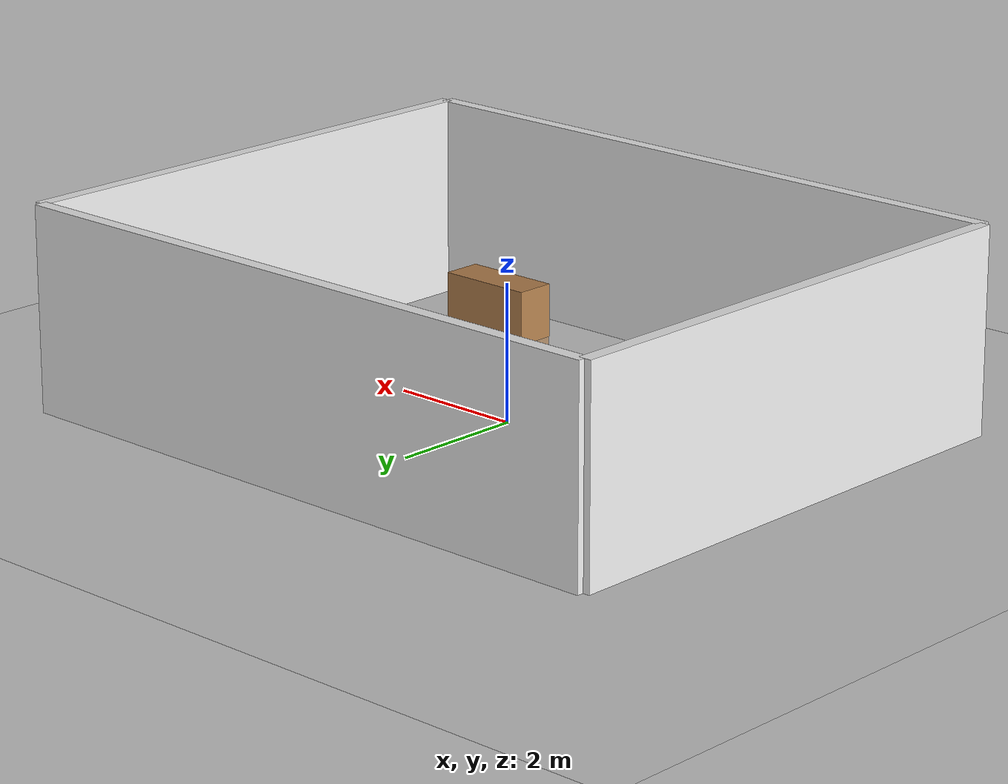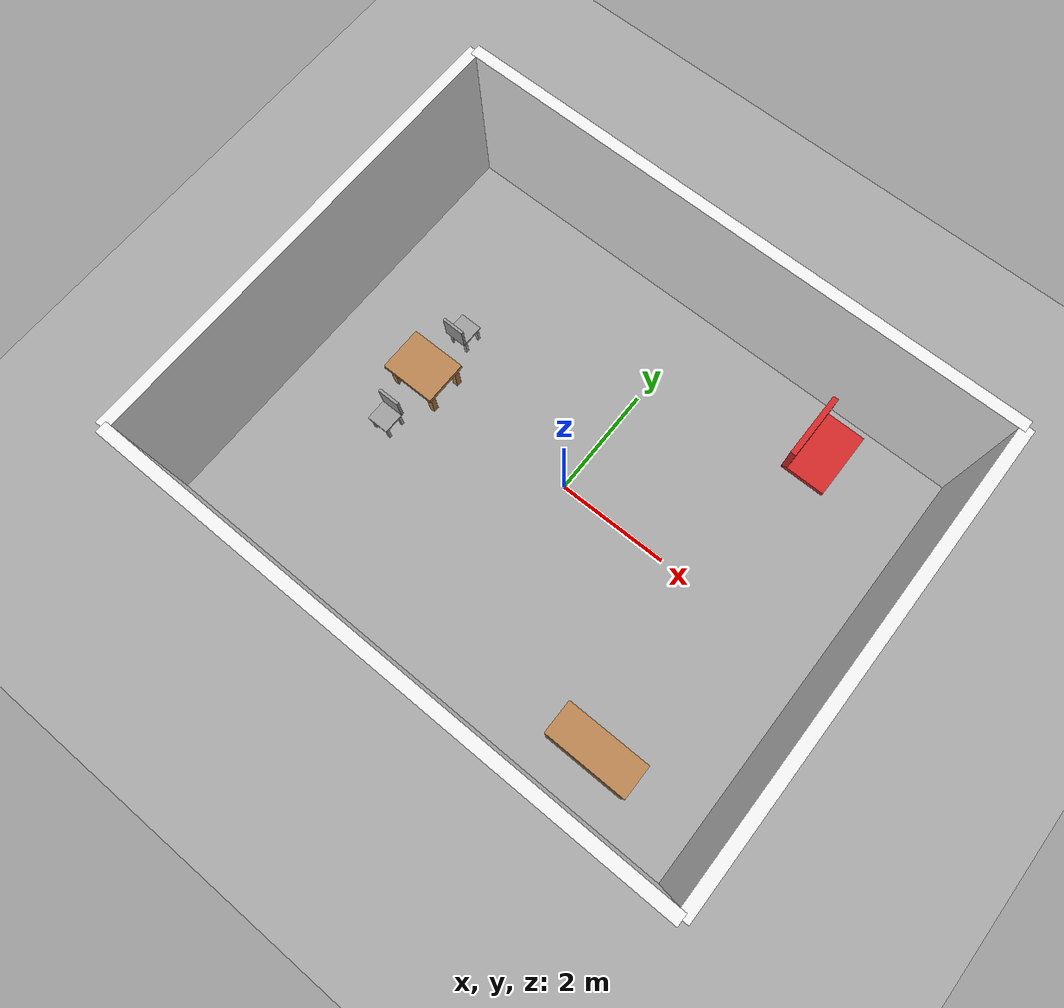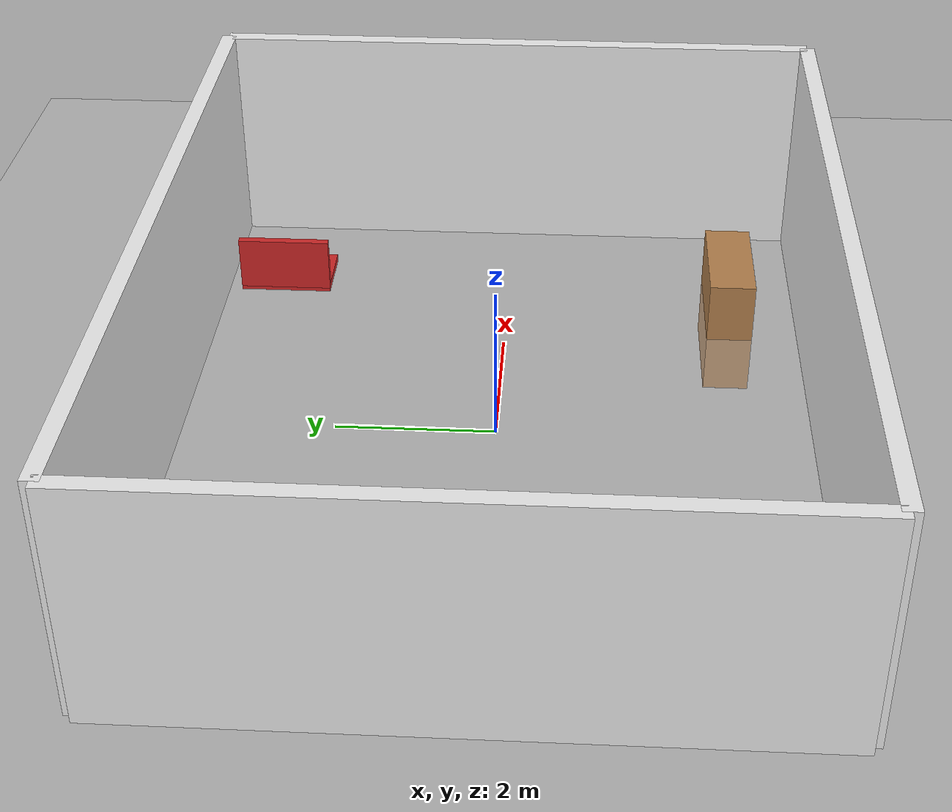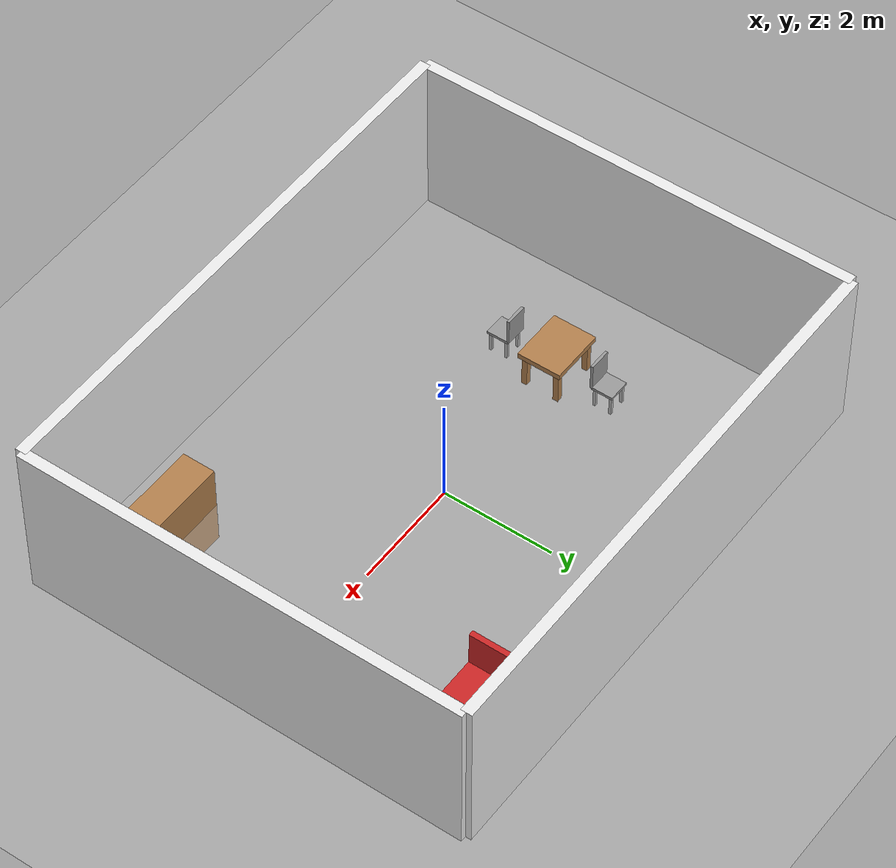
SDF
<?xml version="1.0" ?>
<sdf version="1.11">
  <world name="indoor_world">
    <!-- 全局物理引擎配置 -->
    <physics name="default_physics" type="ode">
      <gravity>0 0 -9.81</gravity>
      <max_step_size>0.001</max_step_size>
      <real_time_factor>1.0</real_time_factor>
      <ode>
        <solver>
          <type>quick</type>
          <iters>50</iters>
          <precon_iters>0</precon_iters>
          <sor>1.3</sor>
        </solver>
        <constraints>
          <cfm>0.0</cfm>
          <erp>0.2</erp>
        </constraints>
      </ode>
    </physics>

    <model name="ground_plane">
      <pose>0 0 0 0 0 0</pose>
      <static>true</static>
      <link name="link">
        <collision name="collision">
          <geometry><plane><normal>0 0 1</normal><size>20 20</size></plane></geometry>
          <surface>
            <friction><ode><mu>0.4</mu><mu2>0.4</mu2></ode></friction>
            <contact>
              <ode>
                <kp>5e7</kp>
                <kd>5e4</kd>
                <max_contacts>20</max_contacts>
              </ode>
              <!-- 修复：将 restitution 移至 contact 内部（符合 SDF 1.11 规范） -->
              <restitution><coefficient>0.0</coefficient></restitution>
            </contact>
          </surface>
        </collision>
        <visual name="visual">
          <geometry><plane><normal>0 0 1</normal><size>20 20</size></plane></geometry>
          <material>
            <script>
              <uri>file://media/materials/scripts/gazebo.material</uri>
              <name>Gazebo/Grey</name>
            </script>
          </material>
        </visual>
        <inertial>
          <mass value="10000.0" />
          <inertia ixx="1e6" ixy="0.0" ixz="0.0" iyy="1e6" iyz="0.0" izz="1e6" />
        </inertial>
      </link>
    </model>

    <light name="sun" type="directional">
      <pose>0 0 10 0 -1.57 0</pose>
      <diffuse>1 1 1 1</diffuse>
      <specular>0.1 0.1 0.1 1</specular>
      <direction>-0.5 0.5 -1</direction>
    </light>

    <model name="back_wall">
      <pose>0 4 1.5 0 0 0</pose>
      <static>true</static>
      <link name="wall_link">
        <collision name="collision">
          <geometry><box><size>10 0.2 3</size></box></geometry>
          <surface>
            <friction><ode><mu>0.8</mu><mu2>0.8</mu2></ode></friction>
            <contact>
              <ode><kp>1e8</kp><kd>1e4</kd></ode>
            </contact>
          </surface>
        </collision>
        <visual name="visual">
          <geometry><box><size>10 0.2 3</size></box></geometry>
          <material><script><uri>file://media/materials/scripts/gazebo.material</uri><name>Gazebo/White</name></script></material>
        </visual>
        <inertial>
          <mass value="5000.0" />
          <inertia ixx="1e5" ixy="0.0" ixz="0.0" iyy="1e5" iyz="0.0" izz="1e5" />
        </inertial>
      </link>
    </model>

    <model name="front_wall">
      <pose>0 -4 1.5 0 0 0</pose>
      <static>true</static>
      <link name="wall_link">
        <collision name="collision">
          <geometry><box><size>10 0.2 3</size></box></geometry>
          <surface>
            <friction><ode><mu>0.8</mu><mu2>0.8</mu2></ode></friction>
            <contact>
              <ode><kp>1e8</kp><kd>1e4</kd></ode>
            </contact>
          </surface>
        </collision>
        <visual name="visual">
          <geometry><box><size>10 0.2 3</size></box></geometry>
          <material><script><uri>file://media/materials/scripts/gazebo.material</uri><name>Gazebo/White</name></script></material>
        </visual>
        <inertial>
          <mass value="5000.0" />
          <inertia ixx="1e5" ixy="0.0" ixz="0.0" iyy="1e5" iyz="0.0" izz="1e5" />
        </inertial>
      </link>
    </model>

    <model name="left_wall">
      <pose>-5 0 1.5 0 0 1.5708</pose>
      <static>true</static>
      <link name="wall_link">
        <collision name="collision">
          <geometry><box><size>8 0.2 3</size></box></geometry>
          <surface>
            <friction><ode><mu>0.8</mu><mu2>0.8</mu2></ode></friction>
            <contact>
              <ode><kp>1e8</kp><kd>1e4</kd></ode>
            </contact>
          </surface>
        </collision>
        <visual name="visual">
          <geometry><box><size>8 0.2 3</size></box></geometry>
          <material><script><uri>file://media/materials/scripts/gazebo.material</uri><name>Gazebo/White</name></script></material>
        </visual>
        <inertial>
          <mass value="5000.0" />
          <inertia ixx="1e5" ixy="0.0" ixz="0.0" iyy="1e5" iyz="0.0" izz="1e5" />
        </inertial>
      </link>
    </model>

    <model name="right_wall">
      <pose>5 0 1.5 0 0 1.5708</pose>
      <static>true</static>
      <link name="wall_link">
        <collision name="collision">
          <geometry><box><size>8 0.2 3</size></box></geometry>
          <surface>
            <friction><ode><mu>0.8</mu><mu2>0.8</mu2></ode></friction>
            <contact>
              <ode><kp>1e8</kp><kd>1e4</kd></ode>
            </contact>
          </surface>
        </collision>
        <visual name="visual">
          <geometry><box><size>8 0.2 3</size></box></geometry>
          <material><script><uri>file://media/materials/scripts/gazebo.material</uri><name>Gazebo/White</name></script></material>
        </visual>
        <inertial>
          <mass value="5000.0" />
          <inertia ixx="1e5" ixy="0.0" ixz="0.0" iyy="1e5" iyz="0.0" izz="1e5" />
        </inertial>
      </link>
    </model>

    <model name="table">
      <pose>-3 0 0.0 0 0 0</pose>
      <static>true</static>
      <link name="table_top">
        <pose>0 0 0.65 0 0 0</pose>
        <collision name="collision">
          <geometry><box><size>1 0.8 0.1</size></box></geometry>
          <surface>
            <friction><ode><mu>0.6</mu><mu2>0.6</mu2></ode></friction>
            <contact>
              <ode><kp>5e7</kp><kd>5e3</kd></ode>
            </contact>
          </surface>
        </collision>
        <visual name="visual">
          <geometry><box><size>1 0.8 0.1</size></box></geometry>
          <material><script><uri>file://media/materials/scripts/gazebo.material</uri><name>Gazebo/Wood</name></script></material>
        </visual>
        <inertial>
          <mass value="10.0" />
          <inertia ixx="0.5" ixy="0.0" ixz="0.0" iyy="0.6" iyz="0.0" izz="0.8" />
        </inertial>
      </link>
      <link name="leg1">
        <pose>-0.4 -0.3 0.3 0 0 0</pose>
        <collision name="collision">
          <geometry><box><size>0.1 0.1 0.6</size></box></geometry>
          <surface>
            <friction><ode><mu>0.6</mu><mu2>0.6</mu2></ode></friction>
            <contact>
              <ode><kp>5e7</kp><kd>5e3</kd></ode>
            </contact>
          </surface>
        </collision>
        <visual name="visual">
          <geometry><box><size>0.1 0.1 0.6</size></box></geometry>
          <material><script><uri>file://media/materials/scripts/gazebo.material</uri><name>Gazebo/Wood</name></script></material>
        </visual>
        <inertial>
          <mass value="2.0" />
          <inertia ixx="0.02" ixy="0.0" ixz="0.0" iyy="0.02" iyz="0.0" izz="0.01" />
        </inertial>
      </link>
      <link name="leg2">
        <pose>-0.4 0.3 0.3 0 0 0</pose>
        <collision name="collision">
          <geometry><box><size>0.1 0.1 0.6</size></box></geometry>
          <surface>
            <friction><ode><mu>0.6</mu><mu2>0.6</mu2></ode></friction>
            <contact>
              <ode><kp>5e7</kp><kd>5e3</kd></ode>
            </contact>
          </surface>
        </collision>
        <visual name="visual">
          <geometry><box><size>0.1 0.1 0.6</size></box></geometry>
          <material><script><uri>file://media/materials/scripts/gazebo.material</uri><name>Gazebo/Wood</name></script></material>
        </visual>
        <inertial>
          <mass value="2.0" />
          <inertia ixx="0.02" ixy="0.0" ixz="0.0" iyy="0.02" iyz="0.0" izz="0.01" />
        </inertial>
      </link>
      <link name="leg3">
        <pose>0.4 -0.3 0.3 0 0 0</pose>
        <collision name="collision">
          <geometry><box><size>0.1 0.1 0.6</size></box></geometry>
          <surface>
            <friction><ode><mu>0.6</mu><mu2>0.6</mu2></ode></friction>
            <contact>
              <ode><kp>5e7</kp><kd>5e3</kd></ode>
            </contact>
          </surface>
        </collision>
        <visual name="visual">
          <geometry><box><size>0.1 0.1 0.6</size></box></geometry>
          <material><script><uri>file://media/materials/scripts/gazebo.material</uri><name>Gazebo/Wood</name></script></material>
        </visual>
        <inertial>
          <mass value="2.0" />
          <inertia ixx="0.02" ixy="0.0" ixz="0.0" iyy="0.02" iyz="0.0" izz="0.01" />
        </inertial>
      </link>
      <link name="leg4">
        <pose>0.4 0.3 0.3 0 0 0</pose>
        <collision name="collision">
          <geometry><box><size>0.1 0.1 0.6</size></box></geometry>
          <surface>
            <friction><ode><mu>0.6</mu><mu2>0.6</mu2></ode></friction>
            <contact>
              <ode><kp>5e7</kp><kd>5e3</kd></ode>
            </contact>
          </surface>
        </collision>
        <visual name="visual">
          <geometry><box><size>0.1 0.1 0.6</size></box></geometry>
          <material><script><uri>file://media/materials/scripts/gazebo.material</uri><name>Gazebo/Wood</name></script></material>
        </visual>
        <inertial>
          <mass value="2.0" />
          <inertia ixx="0.02" ixy="0.0" ixz="0.0" iyy="0.02" iyz="0.0" izz="0.01" />
        </inertial>
      </link>
      <joint name="joint1" type="fixed"><parent>table_top</parent><child>leg1</child></joint>
      <joint name="joint2" type="fixed"><parent>table_top</parent><child>leg2</child></joint>
      <joint name="joint3" type="fixed"><parent>table_top</parent><child>leg3</child></joint>
      <joint name="joint4" type="fixed"><parent>table_top</parent><child>leg4</child></joint>
    </model>

    <model name="chair1">
      <pose>-3 -1 0.0 0 0 0</pose>
      <static>true</static>
      <link name="seat">
        <pose>0 0 0.4 0 0 0</pose>
        <collision name="collision">
          <geometry><box><size>0.4 0.4 0.05</size></box></geometry>
          <surface>
            <friction><ode><mu>0.5</mu><mu2>0.5</mu2></ode></friction>
            <contact>
              <ode><kp>3e7</kp><kd>3e3</kd></ode>
            </contact>
          </surface>
        </collision>
        <visual name="visual">
          <geometry><box><size>0.4 0.4 0.05</size></box></geometry>
          <material><script><uri>file://media/materials/scripts/gazebo.material</uri><name>Gazebo/Grey</name></script></material>
        </visual>
        <inertial>
          <mass value="3.0" />
          <inertia ixx="0.04" ixy="0.0" ixz="0.0" iyy="0.04" iyz="0.0" izz="0.02" />
        </inertial>
      </link>
      <link name="backrest">
        <pose>0 0.2 0.65 0 0 0</pose>
        <collision name="collision">
          <geometry><box><size>0.4 0.05 0.5</size></box></geometry>
          <surface>
            <friction><ode><mu>0.5</mu><mu2>0.5</mu2></ode></friction>
            <contact>
              <ode><kp>3e7</kp><kd>3e3</kd></ode>
            </contact>
          </surface>
        </collision>
        <visual name="visual">
          <geometry><box><size>0.4 0.05 0.5</size></box></geometry>
          <material><script><uri>file://media/materials/scripts/gazebo.material</uri><name>Gazebo/Grey</name></script></material>
        </visual>
        <inertial>
          <mass value="2.0" />
          <inertia ixx="0.08" ixy="0.0" ixz="0.0" iyy="0.01" iyz="0.0" izz="0.08" />
        </inertial>
      </link>
      <link name="leg1">
        <pose>-0.15 -0.15 0.2 0 0 0</pose>
        <collision name="collision">
          <geometry><box><size>0.05 0.05 0.4</size></box></geometry>
          <surface>
            <friction><ode><mu>0.5</mu><mu2>0.5</mu2></ode></friction>
            <contact>
              <ode><kp>3e7</kp><kd>3e3</kd></ode>
            </contact>
          </surface>
        </collision>
        <visual name="visual"><geometry><box><size>0.05 0.05 0.4</size></box></geometry></visual>
        <inertial>
          <mass value="0.5" />
          <inertia ixx="0.003" ixy="0.0" ixz="0.0" iyy="0.003" iyz="0.0" izz="0.001" />
        </inertial>
      </link>
      <link name="leg2">
        <pose>-0.15 0.15 0.2 0 0 0</pose>
        <collision name="collision">
          <geometry><box><size>0.05 0.05 0.4</size></box></geometry>
          <surface>
            <friction><ode><mu>0.5</mu><mu2>0.5</mu2></ode></friction>
            <contact>
              <ode><kp>3e7</kp><kd>3e3</kd></ode>
            </contact>
          </surface>
        </collision>
        <visual name="visual"><geometry><box><size>0.05 0.05 0.4</size></box></geometry></visual>
        <inertial>
          <mass value="0.5" />
          <inertia ixx="0.003" ixy="0.0" ixz="0.0" iyy="0.003" iyz="0.0" izz="0.001" />
        </inertial>
      </link>
      <link name="leg3">
        <pose>0.15 -0.15 0.2 0 0 0</pose>
        <collision name="collision">
          <geometry><box><size>0.05 0.05 0.4</size></box></geometry>
          <surface>
            <friction><ode><mu>0.5</mu><mu2>0.5</mu2></ode></friction>
            <contact>
              <ode><kp>3e7</kp><kd>3e3</kd></ode>
            </contact>
          </surface>
        </collision>
        <visual name="visual"><geometry><box><size>0.05 0.05 0.4</size></box></geometry></visual>
        <inertial>
          <mass value="0.5" />
          <inertia ixx="0.003" ixy="0.0" ixz="0.0" iyy="0.003" iyz="0.0" izz="0.001" />
        </inertial>
      </link>
      <link name="leg4">
        <pose>0.15 0.15 0.2 0 0 0</pose>
        <collision name="collision">
          <geometry><box><size>0.05 0.05 0.4</size></box></geometry>
          <surface>
            <friction><ode><mu>0.5</mu><mu2>0.5</mu2></ode></friction>
            <contact>
              <ode><kp>3e7</kp><kd>3e3</kd></ode>
            </contact>
          </surface>
        </collision>
        <visual name="visual"><geometry><box><size>0.05 0.05 0.4</size></box></geometry></visual>
        <inertial>
          <mass value="0.5" />
          <inertia ixx="0.003" ixy="0.0" ixz="0.0" iyy="0.003" iyz="0.0" izz="0.001" />
        </inertial>
      </link>
      <joint name="j1" type="fixed"><parent>seat</parent><child>backrest</child></joint>
      <joint name="j2" type="fixed"><parent>seat</parent><child>leg1</child></joint>
      <joint name="j3" type="fixed"><parent>seat</parent><child>leg2</child></joint>
      <joint name="j4" type="fixed"><parent>seat</parent><child>leg3</child></joint>
      <joint name="j5" type="fixed"><parent>seat</parent><child>leg4</child></joint>
    </model>

    <model name="chair2">
      <pose>-3 1 0.0 0 0 3.14</pose>
      <static>true</static>
      <link name="seat">
        <pose>0 0 0.4 0 0 0</pose>
        <collision name="collision">
          <geometry><box><size>0.4 0.4 0.05</size></box></geometry>
          <surface>
            <friction><ode><mu>0.5</mu><mu2>0.5</mu2></ode></friction>
            <contact>
              <ode><kp>3e7</kp><kd>3e3</kd></ode>
            </contact>
          </surface>
        </collision>
        <visual name="visual">
          <geometry><box><size>0.4 0.4 0.05</size></box></geometry>
          <material><script><uri>file://media/materials/scripts/gazebo.material</uri><name>Gazebo/Grey</name></script></material>
        </visual>
        <inertial>
          <mass value="3.0" />
          <inertia ixx="0.04" ixy="0.0" ixz="0.0" iyy="0.04" iyz="0.0" izz="0.02" />
        </inertial>
      </link>
      <link name="backrest">
        <pose>0 0.2 0.65 0 0 0</pose>
        <collision name="collision">
          <geometry><box><size>0.4 0.05 0.5</size></box></geometry>
          <surface>
            <friction><ode><mu>0.5</mu><mu2>0.5</mu2></ode></friction>
            <contact>
              <ode><kp>3e7</kp><kd>3e3</kd></ode>
            </contact>
          </surface>
        </collision>
        <visual name="visual">
          <geometry><box><size>0.4 0.05 0.5</size></box></geometry>
          <material><script><uri>file://media/materials/scripts/gazebo.material</uri><name>Gazebo/Grey</name></script></material>
        </visual>
        <inertial>
          <mass value="2.0" />
          <inertia ixx="0.08" ixy="0.0" ixz="0.0" iyy="0.01" iyz="0.0" izz="0.08" />
        </inertial>
      </link>
      <link name="leg1">
        <pose>-0.15 -0.15 0.2 0 0 0</pose>
        <collision name="collision">
          <geometry><box><size>0.05 0.05 0.4</size></box></geometry>
          <surface>
            <friction><ode><mu>0.5</mu><mu2>0.5</mu2></ode></friction>
            <contact>
              <ode><kp>3e7</kp><kd>3e3</kd></ode>
            </contact>
          </surface>
        </collision>
        <visual name="visual"><geometry><box><size>0.05 0.05 0.4</size></box></geometry></visual>
        <inertial>
          <mass value="0.5" />
          <inertia ixx="0.003" ixy="0.0" ixz="0.0" iyy="0.003" iyz="0.0" izz="0.001" />
        </inertial>
      </link>
      <link name="leg2">
        <pose>-0.15 0.15 0.2 0 0 0</pose>
        <collision name="collision">
          <geometry><box><size>0.05 0.05 0.4</size></box></geometry>
          <surface>
            <friction><ode><mu>0.5</mu><mu2>0.5</mu2></ode></friction>
            <contact>
              <ode><kp>3e7</kp><kd>3e3</kd></ode>
            </contact>
          </surface>
        </collision>
        <visual name="visual"><geometry><box><size>0.05 0.05 0.4</size></box></geometry></visual>
        <inertial>
          <mass value="0.5" />
          <inertia ixx="0.003" ixy="0.0" ixz="0.0" iyy="0.003" iyz="0.0" izz="0.001" />
        </inertial>
      </link>
      <link name="leg3">
        <pose>0.15 -0.15 0.2 0 0 0</pose>
        <collision name="collision">
          <geometry><box><size>0.05 0.05 0.4</size></box></geometry>
          <surface>
            <friction><ode><mu>0.5</mu><mu2>0.5</mu2></ode></friction>
            <contact>
              <ode><kp>3e7</kp><kd>3e3</kd></ode>
            </contact>
          </surface>
        </collision>
        <visual name="visual"><geometry><box><size>0.05 0.05 0.4</size></box></geometry></visual>
        <inertial>
          <mass value="0.5" />
          <inertia ixx="0.003" ixy="0.0" ixz="0.0" iyy="0.003" iyz="0.0" izz="0.001" />
        </inertial>
      </link>
      <link name="leg4">
        <pose>0.15 0.15 0.2 0 0 0</pose>
        <collision name="collision">
          <geometry><box><size>0.05 0.05 0.4</size></box></geometry>
          <surface>
            <friction><ode><mu>0.5</mu><mu2>0.5</mu2></ode></friction>
            <contact>
              <ode><kp>3e7</kp><kd>3e3</kd></ode>
            </contact>
          </surface>
        </collision>
        <visual name="visual"><geometry><box><size>0.05 0.05 0.4</size></box></geometry></visual>
        <inertial>
          <mass value="0.5" />
          <inertia ixx="0.003" ixy="0.0" ixz="0.0" iyy="0.003" iyz="0.0" izz="0.001" />
        </inertial>
      </link>
      <joint name="j1" type="fixed"><parent>seat</parent><child>backrest</child></joint>
      <joint name="j2" type="fixed"><parent>seat</parent><child>leg1</child></joint>
      <joint name="j3" type="fixed"><parent>seat</parent><child>leg2</child></joint>
      <joint name="j4" type="fixed"><parent>seat</parent><child>leg3</child></joint>
      <joint name="j5" type="fixed"><parent>seat</parent><child>leg4</child></joint>
    </model>

    <model name="sofa">
      <pose>3 3 0.0 0 0 1.5708</pose>
      <static>true</static>
      <link name="sofa_seat">
        <pose>0 0 0.4 0 0 0</pose>
        <collision name="collision">
          <geometry><box><size>1.2 0.8 0.1</size></box></geometry>
          <surface>
            <friction><ode><mu>0.7</mu><mu2>0.7</mu2></ode></friction>
            <contact>
              <ode><kp>4e7</kp><kd>4e3</kd></ode>
            </contact>
          </surface>
        </collision>
        <visual name="visual">
          <geometry><box><size>1.2 0.8 0.1</size></box></geometry>
          <material><script><uri>file://media/materials/scripts/gazebo.material</uri><name>Gazebo/Red</name></script></material>
        </visual>
        <inertial>
          <mass value="15.0" />
          <inertia ixx="1.2" ixy="0.0" ixz="0.0" iyy="0.8" iyz="0.0" izz="1.5" />
        </inertial>
      </link>
      <link name="sofa_back">
        <pose>0 0.35 0.75 0 0 0</pose>
        <collision name="collision">
          <geometry><box><size>1.2 0.1 0.7</size></box></geometry>
          <surface>
            <friction><ode><mu>0.7</mu><mu2>0.7</mu2></ode></friction>
            <contact>
              <ode><kp>4e7</kp><kd>4e3</kd></ode>
            </contact>
          </surface>
        </collision>
        <visual name="visual">
          <geometry><box><size>1.2 0.1 0.7</size></box></geometry>
          <material><script><uri>file://media/materials/scripts/gazebo.material</uri><name>Gazebo/Red</name></script></material>
        </visual>
        <inertial>
          <mass value="8.0" />
          <inertia ixx="0.5" ixy="0.0" ixz="0.0" iyy="0.1" iyz="0.0" izz="0.8" />
        </inertial>
      </link>
      <joint name="sofa_joint" type="fixed"><parent>sofa_seat</parent><child>sofa_back</child></joint>
    </model>

    <model name="cabinet">
      <pose>3 -3 0.0 0 0 0</pose>
      <static>true</static>
      <link name="cabinet_link">
        <collision name="collision">
          <geometry><box><size>1.5 0.6 1.6</size></box></geometry>
          <surface>
            <friction><ode><mu>0.8</mu><mu2>0.8</mu2></ode></friction>
            <contact>
              <ode><kp>6e7</kp><kd>6e3</kd></ode>
            </contact>
          </surface>
        </collision>
        <visual name="visual">
          <geometry><box><size>1.5 0.6 1.6</size></box></geometry>
          <material><script><uri>file://media/materials/scripts/gazebo.material</uri><name>Gazebo/Wood</name></script></material>
        </visual>
        <inertial>
          <mass value="20.0" />
          <inertia ixx="3.0" ixy="0.0" ixz="0.0" iyy="1.5" iyz="0.0" izz="2.5" />
        </inertial>
      </link>
    </model>
  </world>
</sdf>
